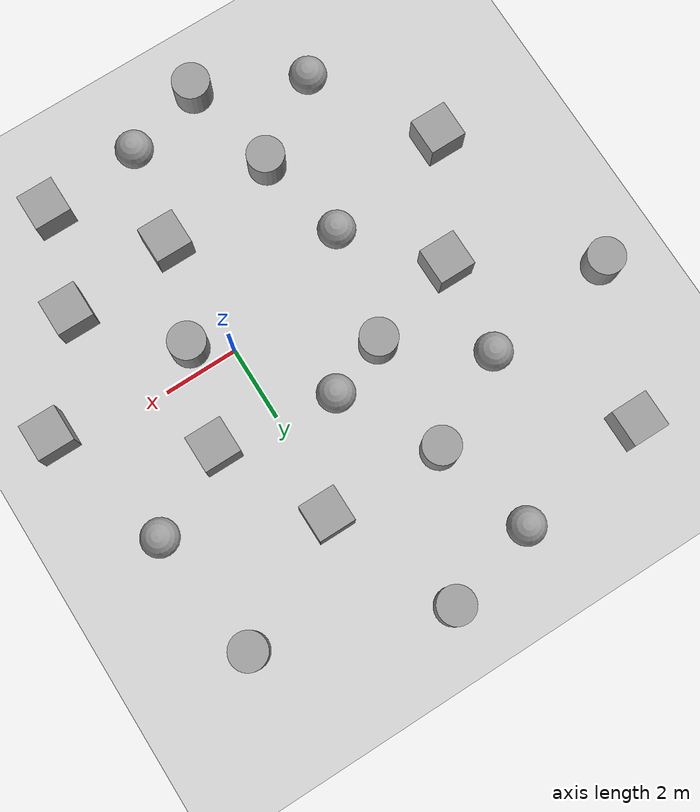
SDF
<sdf version="1.7">
 <world name="default">
  <light name="sun" type="directional">
   <pose>0 0 10 0 -0 0</pose>
   <diffuse>0.8 0.8 0.8 1</diffuse>
   <specular>0.2 0.2 0.2 1</specular>
   <attenuation>
    <range>1000</range>
    <constant>0.9</constant>
    <linear>0.01</linear>
    <quadratic>0.001</quadratic>
   </attenuation>
   <direction>-0.5 0.1 -0.9</direction>
   <spot><inner_angle>0</inner_angle><outer_angle>0</outer_angle><falloff>0</falloff></spot>
  </light>
  <model name="ground_plane">
   <static>1</static>
   <link name="link">
    <collision name="collision">
     <geometry><plane><normal>0 0 1</normal><size>100 100</size></plane></geometry>
     <surface><friction><ode><mu>100</mu><mu2>50</mu2></ode></friction></surface>
    </collision>
    <visual name="visual">
     <cast_shadows>0</cast_shadows>
     <geometry><plane><normal>0 0 1</normal><size>100 100</size></plane></geometry>
     <material>
      <script><uri>file://media/materials/scripts/gazebo.material</uri><name>Gazebo/Grey</name></script>
     </material>
    </visual>
   </link>
  </model>
  <gravity>0 0 -9.8</gravity>
  <magnetic_field>6e-06 2.3e-05 -4.2e-05</magnetic_field>
  <atmosphere type="adiabatic"/>
  <physics type="ode">
   <max_step_size>0.001</max_step_size>
   <real_time_factor>1</real_time_factor>
   <real_time_update_rate>1000</real_time_update_rate>
  </physics>
  <scene><ambient>0.4 0.4 0.4 1</ambient><background>0.7 0.7 0.7 1</background><shadows>1</shadows></scene>
  <spherical_coordinates>
   <surface_model>EARTH_WGS84</surface_model>
   <latitude_deg>0</latitude_deg>
   <longitude_deg>0</longitude_deg>
   <elevation>0</elevation>
   <heading_deg>0</heading_deg>
  </spherical_coordinates>
  <model name="unit_box">
   <pose>1.69502 1.89475 0.499995 0 1e-05 0</pose>
   <link name="link">
    <inertial>
     <mass>1</mass>
     <inertia>
      <ixx>0.166667</ixx>
      <ixy>0</ixy>
      <ixz>0</ixz>
      <iyy>0.166667</iyy>
      <iyz>0</iyz>
      <izz>0.166667</izz>
     </inertia>
    </inertial>
    <collision name="collision"><geometry><box><size>1 1 1</size></box></geometry></collision>
    <visual name="visual">
     <geometry><box><size>1 1 1</size></box></geometry>
     <material>
      <script><name>Gazebo/Grey</name><uri>file://media/materials/scripts/gazebo.material</uri></script>
     </material>
    </visual>
   </link>
  </model>
  <model name="unit_sphere">
   <pose>-3.82155 -1.20603 0.5 0 -0 0</pose>
   <link name="link">
    <inertial>
     <mass>1</mass>
     <inertia><ixx>0.1</ixx><ixy>0</ixy><ixz>0</ixz><iyy>0.1</iyy><iyz>0</iyz><izz>0.1</izz></inertia>
    </inertial>
    <collision name="collision"><geometry><sphere><radius>0.5</radius></sphere></geometry></collision>
    <visual name="visual">
     <geometry><sphere><radius>0.5</radius></sphere></geometry>
     <material>
      <script><name>Gazebo/Grey</name><uri>file://media/materials/scripts/gazebo.material</uri></script>
     </material>
    </visual>
   </link>
  </model>
  <model name="unit_cylinder">
   <pose>-3.15005 1.80318 0.499996 4e-06 2e-06 -0</pose>
   <link name="link">
    <inertial>
     <mass>1</mass>
     <inertia><ixx>0.145833</ixx><ixy>0</ixy><ixz>0</ixz><iyy>0.145833</iyy><iyz>0</iyz><izz>0.125</izz></inertia>
    </inertial>
    <collision name="collision">
     <geometry><cylinder><radius>0.5</radius><length>1</length></cylinder></geometry>
    </collision>
    <visual name="visual">
     <geometry><cylinder><radius>0.5</radius><length>1</length></cylinder></geometry>
     <material>
      <script><name>Gazebo/Grey</name><uri>file://media/materials/scripts/gazebo.material</uri></script>
     </material>
    </visual>
   </link>
  </model>
  <model name="unit_sphere_0">
   <pose>-1.54336 2.36215 0.5 0 -0 0</pose>
   <link name="link">
    <inertial>
     <mass>1</mass>
     <inertia><ixx>0.1</ixx><ixy>0</ixy><ixz>0</ixz><iyy>0.1</iyy><iyz>0</iyz><izz>0.1</izz></inertia>
    </inertial>
    <collision name="collision"><geometry><sphere><radius>0.5</radius></sphere></geometry></collision>
    <visual name="visual">
     <geometry><sphere><radius>0.5</radius></sphere></geometry>
     <material>
      <script><name>Gazebo/Grey</name><uri>file://media/materials/scripts/gazebo.material</uri></script>
     </material>
    </visual>
   </link>
  </model>
  <model name="unit_box_1">
   <pose>0.250022 4.78065 0.499995 0 1e-05 0</pose>
   <link name="link">
    <inertial>
     <mass>1</mass>
     <inertia>
      <ixx>0.166667</ixx>
      <ixy>0</ixy>
      <ixz>0</ixz>
      <iyy>0.166667</iyy>
      <iyz>0</iyz>
      <izz>0.166667</izz>
     </inertia>
    </inertial>
    <collision name="collision"><geometry><box><size>1 1 1</size></box></geometry></collision>
    <visual name="visual">
     <geometry><box><size>1 1 1</size></box></geometry>
     <material>
      <script><name>Gazebo/Grey</name><uri>file://media/materials/scripts/gazebo.material</uri></script>
     </material>
    </visual>
   </link>
  </model>
  <model name="unit_cylinder_0">
   <pose>-2.98296 4.88955 0.499992 -3e-06 2e-06 0</pose>
   <link name="link">
    <inertial>
     <mass>1</mass>
     <inertia><ixx>0.145833</ixx><ixy>0</ixy><ixz>0</ixz><iyy>0.145833</iyy><iyz>0</iyz><izz>0.125</izz></inertia>
    </inertial>
    <collision name="collision">
     <geometry><cylinder><radius>0.5</radius><length>1</length></cylinder></geometry>
    </collision>
    <visual name="visual">
     <geometry><cylinder><radius>0.5</radius><length>1</length></cylinder></geometry>
     <material>
      <script><name>Gazebo/Grey</name><uri>file://media/materials/scripts/gazebo.material</uri></script>
     </material>
    </visual>
   </link>
  </model>
  <model name="unit_sphere_1">
   <pose>-5.42978 3.57123 0.5 0 -0 0</pose>
   <link name="link">
    <inertial>
     <mass>1</mass>
     <inertia><ixx>0.1</ixx><ixy>0</ixy><ixz>0</ixz><iyy>0.1</iyy><iyz>0</iyz><izz>0.1</izz></inertia>
    </inertial>
    <collision name="collision"><geometry><sphere><radius>0.5</radius></sphere></geometry></collision>
    <visual name="visual">
     <geometry><sphere><radius>0.5</radius></sphere></geometry>
     <material>
      <script><name>Gazebo/Grey</name><uri>file://media/materials/scripts/gazebo.material</uri></script>
     </material>
    </visual>
   </link>
  </model>
  <model name="unit_box_2">
   <pose>-5.69018 1.00259 0.499995 1e-05 -0 0</pose>
   <link name="link">
    <inertial>
     <mass>1</mass>
     <inertia>
      <ixx>0.166667</ixx>
      <ixy>0</ixy>
      <ixz>0</ixz>
      <iyy>0.166667</iyy>
      <iyz>0</iyz>
      <izz>0.166667</izz>
     </inertia>
    </inertial>
    <collision name="collision"><geometry><box><size>1 1 1</size></box></geometry></collision>
    <visual name="visual">
     <geometry><box><size>1 1 1</size></box></geometry>
     <material>
      <script><name>Gazebo/Grey</name><uri>file://media/materials/scripts/gazebo.material</uri></script>
     </material>
    </visual>
   </link>
  </model>
  <model name="unit_box_3">
   <pose>3.00586 -2.94897 0.499995 -1e-05 0 0</pose>
   <link name="link">
    <inertial>
     <mass>1</mass>
     <inertia>
      <ixx>0.166667</ixx>
      <ixy>0</ixy>
      <ixz>0</ixz>
      <iyy>0.166667</iyy>
      <iyz>0</iyz>
      <izz>0.166667</izz>
     </inertia>
    </inertial>
    <collision name="collision"><geometry><box><size>1 1 1</size></box></geometry></collision>
    <visual name="visual">
     <geometry><box><size>1 1 1</size></box></geometry>
     <material>
      <script><name>Gazebo/Grey</name><uri>file://media/materials/scripts/gazebo.material</uri></script>
     </material>
    </visual>
   </link>
  </model>
  <model name="unit_box_4">
   <pose>-0.014613 -3.24594 0.499995 1e-05 -0 0</pose>
   <link name="link">
    <inertial>
     <mass>1</mass>
     <inertia>
      <ixx>0.166667</ixx>
      <ixy>0</ixy>
      <ixz>0</ixz>
      <iyy>0.166667</iyy>
      <iyz>0</iyz>
      <izz>0.166667</izz>
     </inertia>
    </inertial>
    <collision name="collision"><geometry><box><size>1 1 1</size></box></geometry></collision>
    <visual name="visual">
     <geometry><box><size>1 1 1</size></box></geometry>
     <material>
      <script><name>Gazebo/Grey</name><uri>file://media/materials/scripts/gazebo.material</uri></script>
     </material>
    </visual>
   </link>
  </model>
  <model name="unit_cylinder_1">
   <pose>0.906717 -0.649923 0.499996 3e-06 3e-06 0</pose>
   <link name="link">
    <inertial>
     <mass>1</mass>
     <inertia><ixx>0.145833</ixx><ixy>0</ixy><ixz>0</ixz><iyy>0.145833</iyy><iyz>0</iyz><izz>0.125</izz></inertia>
    </inertial>
    <collision name="collision">
     <geometry><cylinder><radius>0.5</radius><length>1</length></cylinder></geometry>
    </collision>
    <visual name="visual">
     <geometry><cylinder><radius>0.5</radius><length>1</length></cylinder></geometry>
     <material>
      <script><name>Gazebo/Grey</name><uri>file://media/materials/scripts/gazebo.material</uri></script>
     </material>
    </visual>
   </link>
  </model>
  <model name="unit_cylinder_2">
   <pose>-3.28053 -3.73265 0.499992 -3e-06 2e-06 0</pose>
   <link name="link">
    <inertial>
     <mass>1</mass>
     <inertia><ixx>0.145833</ixx><ixy>0</ixy><ixz>0</ixz><iyy>0.145833</iyy><iyz>0</iyz><izz>0.125</izz></inertia>
    </inertial>
    <collision name="collision">
     <geometry><cylinder><radius>0.5</radius><length>1</length></cylinder></geometry>
    </collision>
    <visual name="visual">
     <geometry><cylinder><radius>0.5</radius><length>1</length></cylinder></geometry>
     <material>
      <script><name>Gazebo/Grey</name><uri>file://media/materials/scripts/gazebo.material</uri></script>
     </material>
    </visual>
   </link>
  </model>
  <model name="unit_box_5">
   <pose>-7.36973 -1.97485 0.499995 1e-05 -0 0</pose>
   <link name="link">
    <inertial>
     <mass>1</mass>
     <inertia>
      <ixx>0.166667</ixx>
      <ixy>0</ixy>
      <ixz>0</ixz>
      <iyy>0.166667</iyy>
      <iyz>0</iyz>
      <izz>0.166667</izz>
     </inertia>
    </inertial>
    <collision name="collision"><geometry><box><size>1 1 1</size></box></geometry></collision>
    <visual name="visual">
     <geometry><box><size>1 1 1</size></box></geometry>
     <material>
      <script><name>Gazebo/Grey</name><uri>file://media/materials/scripts/gazebo.material</uri></script>
     </material>
    </visual>
   </link>
  </model>
  <model name="unit_sphere_2">
   <pose>-5.43142 -5.1441 0.5 0 -0 0</pose>
   <link name="link">
    <inertial>
     <mass>1</mass>
     <inertia><ixx>0.1</ixx><ixy>0</ixy><ixz>0</ixz><iyy>0.1</iyy><iyz>0</iyz><izz>0.1</izz></inertia>
    </inertial>
    <collision name="collision"><geometry><sphere><radius>0.5</radius></sphere></geometry></collision>
    <visual name="visual">
     <geometry><sphere><radius>0.5</radius></sphere></geometry>
     <material>
      <script><name>Gazebo/Grey</name><uri>file://media/materials/scripts/gazebo.material</uri></script>
     </material>
    </visual>
   </link>
  </model>
  <model name="unit_cylinder_3">
   <pose>-2.70102 -6.44376 0.499992 -3e-06 2e-06 0</pose>
   <link name="link">
    <inertial>
     <mass>1</mass>
     <inertia><ixx>0.145833</ixx><ixy>0</ixy><ixz>0</ixz><iyy>0.145833</iyy><iyz>0</iyz><izz>0.125</izz></inertia>
    </inertial>
    <collision name="collision">
     <geometry><cylinder><radius>0.5</radius><length>1</length></cylinder></geometry>
    </collision>
    <visual name="visual">
     <geometry><cylinder><radius>0.5</radius><length>1</length></cylinder></geometry>
     <material>
      <script><name>Gazebo/Grey</name><uri>file://media/materials/scripts/gazebo.material</uri></script>
     </material>
    </visual>
   </link>
  </model>
  <model name="unit_sphere_3">
   <pose>-0.568196 -5.81329 0.5 0 -0 0</pose>
   <link name="link">
    <inertial>
     <mass>1</mass>
     <inertia><ixx>0.1</ixx><ixy>0</ixy><ixz>0</ixz><iyy>0.1</iyy><iyz>0</iyz><izz>0.1</izz></inertia>
    </inertial>
    <collision name="collision"><geometry><sphere><radius>0.5</radius></sphere></geometry></collision>
    <visual name="visual">
     <geometry><sphere><radius>0.5</radius></sphere></geometry>
     <material>
      <script><name>Gazebo/Grey</name><uri>file://media/materials/scripts/gazebo.material</uri></script>
     </material>
    </visual>
   </link>
  </model>
  <model name="unit_box_6">
   <pose>2.12136 -5.60329 0.499995 1e-05 -0 0</pose>
   <link name="link">
    <inertial>
     <mass>1</mass>
     <inertia>
      <ixx>0.166667</ixx>
      <ixy>0</ixy>
      <ixz>0</ixz>
      <iyy>0.166667</iyy>
      <iyz>0</iyz>
      <izz>0.166667</izz>
     </inertia>
    </inertial>
    <collision name="collision"><geometry><box><size>1 1 1</size></box></geometry></collision>
    <visual name="visual">
     <geometry><box><size>1 1 1</size></box></geometry>
     <material>
      <script><name>Gazebo/Grey</name><uri>file://media/materials/scripts/gazebo.material</uri></script>
     </material>
    </visual>
   </link>
  </model>
  <model name="unit_cylinder_4">
   <pose>-9.06972 3.1081 0.499998 3e-06 -3e-06 0</pose>
   <link name="link">
    <inertial>
     <mass>1</mass>
     <inertia><ixx>0.145833</ixx><ixy>0</ixy><ixz>0</ixz><iyy>0.145833</iyy><iyz>0</iyz><izz>0.125</izz></inertia>
    </inertial>
    <collision name="collision">
     <geometry><cylinder><radius>0.5</radius><length>1</length></cylinder></geometry>
    </collision>
    <visual name="visual">
     <geometry><cylinder><radius>0.5</radius><length>1</length></cylinder></geometry>
     <material>
      <script><name>Gazebo/Grey</name><uri>file://media/materials/scripts/gazebo.material</uri></script>
     </material>
    </visual>
   </link>
  </model>
  <model name="unit_box_7">
   <pose>-7.41781 6.91938 0.499995 1e-05 -0 0</pose>
   <link name="link">
    <inertial>
     <mass>1</mass>
     <inertia>
      <ixx>0.166667</ixx>
      <ixy>0</ixy>
      <ixz>0</ixz>
      <iyy>0.166667</iyy>
      <iyz>0</iyz>
      <izz>0.166667</izz>
     </inertia>
    </inertial>
    <collision name="collision"><geometry><box><size>1 1 1</size></box></geometry></collision>
    <visual name="visual">
     <geometry><box><size>1 1 1</size></box></geometry>
     <material>
      <script><name>Gazebo/Grey</name><uri>file://media/materials/scripts/gazebo.material</uri></script>
     </material>
    </visual>
   </link>
  </model>
  <model name="unit_sphere_4">
   <pose>-3.70565 7.60008 0.5 0 -0 0</pose>
   <link name="link">
    <inertial>
     <mass>1</mass>
     <inertia><ixx>0.1</ixx><ixy>0</ixy><ixz>0</ixz><iyy>0.1</iyy><iyz>0</iyz><izz>0.1</izz></inertia>
    </inertial>
    <collision name="collision"><geometry><sphere><radius>0.5</radius></sphere></geometry></collision>
    <visual name="visual">
     <geometry><sphere><radius>0.5</radius></sphere></geometry>
     <material>
      <script><name>Gazebo/Grey</name><uri>file://media/materials/scripts/gazebo.material</uri></script>
     </material>
    </visual>
   </link>
  </model>
  <model name="unit_cylinder_5">
   <pose>-1.18599 8.26174 0.499992 -3e-06 4e-06 0</pose>
   <link name="link">
    <inertial>
     <mass>1</mass>
     <inertia><ixx>0.145833</ixx><ixy>0</ixy><ixz>0</ixz><iyy>0.145833</iyy><iyz>0</iyz><izz>0.125</izz></inertia>
    </inertial>
    <collision name="collision">
     <geometry><cylinder><radius>0.5</radius><length>1</length></cylinder></geometry>
    </collision>
    <visual name="visual">
     <geometry><cylinder><radius>0.5</radius><length>1</length></cylinder></geometry>
     <material>
      <script><name>Gazebo/Grey</name><uri>file://media/materials/scripts/gazebo.material</uri></script>
     </material>
    </visual>
   </link>
  </model>
  <model name="unit_cylinder_6">
   <pose>3.53816 6.52427 0.499998 3e-06 -4e-06 0</pose>
   <link name="link">
    <inertial>
     <mass>1</mass>
     <inertia><ixx>0.145833</ixx><ixy>0</ixy><ixz>0</ixz><iyy>0.145833</iyy><iyz>0</iyz><izz>0.125</izz></inertia>
    </inertial>
    <collision name="collision">
     <geometry><cylinder><radius>0.5</radius><length>1</length></cylinder></geometry>
    </collision>
    <visual name="visual">
     <geometry><cylinder><radius>0.5</radius><length>1</length></cylinder></geometry>
     <material>
      <script><name>Gazebo/Grey</name><uri>file://media/materials/scripts/gazebo.material</uri></script>
     </material>
    </visual>
   </link>
  </model>
  <model name="unit_sphere_5">
   <pose>3.96036 3.0785 0.5 0 -0 0</pose>
   <link name="link">
    <inertial>
     <mass>1</mass>
     <inertia><ixx>0.1</ixx><ixy>0</ixy><ixz>0</ixz><iyy>0.1</iyy><iyz>0</iyz><izz>0.1</izz></inertia>
    </inertial>
    <collision name="collision"><geometry><sphere><radius>0.5</radius></sphere></geometry></collision>
    <visual name="visual">
     <geometry><sphere><radius>0.5</radius></sphere></geometry>
     <material>
      <script><name>Gazebo/Grey</name><uri>file://media/materials/scripts/gazebo.material</uri></script>
     </material>
    </visual>
   </link>
  </model>
  <model name="unit_box_8">
   <pose>4.96354 -0.505914 0.499995 0 -1e-05 0</pose>
   <link name="link">
    <inertial>
     <mass>1</mass>
     <inertia>
      <ixx>0.166667</ixx>
      <ixy>0</ixy>
      <ixz>0</ixz>
      <iyy>0.166667</iyy>
      <iyz>0</iyz>
      <izz>0.166667</izz>
     </inertia>
    </inertial>
    <collision name="collision"><geometry><box><size>1 1 1</size></box></geometry></collision>
    <visual name="visual">
     <geometry><box><size>1 1 1</size></box></geometry>
     <material>
      <script><name>Gazebo/Grey</name><uri>file://media/materials/scripts/gazebo.material</uri></script>
     </material>
    </visual>
   </link>
  </model>
 </world>
</sdf>
